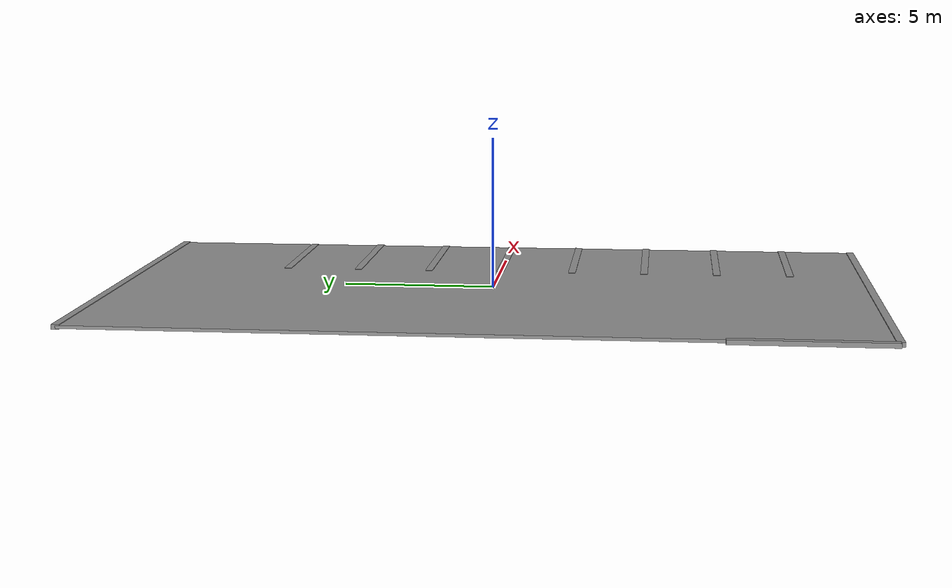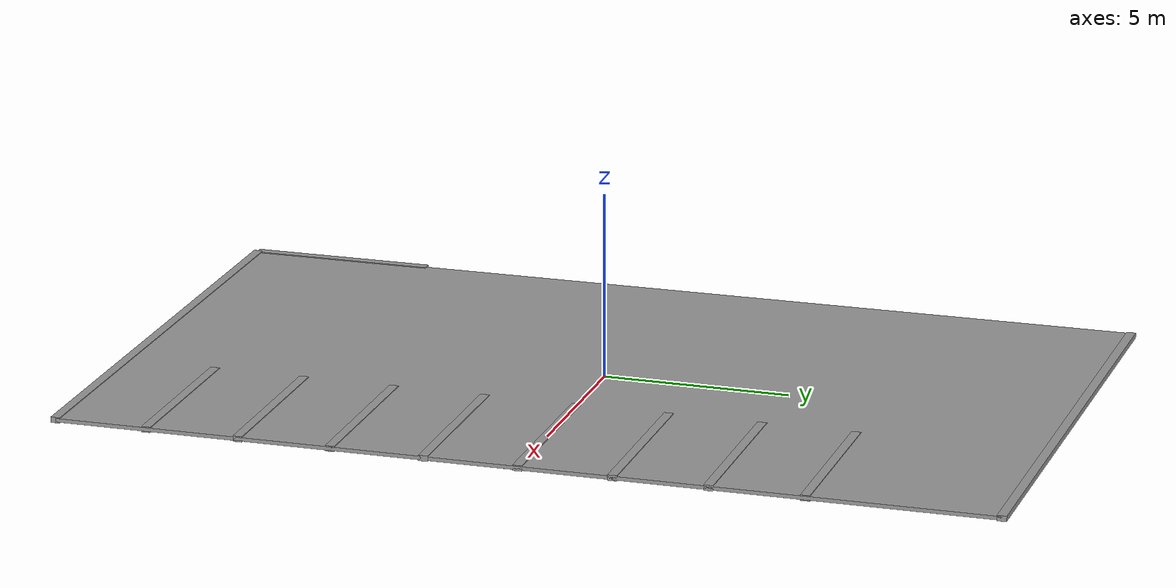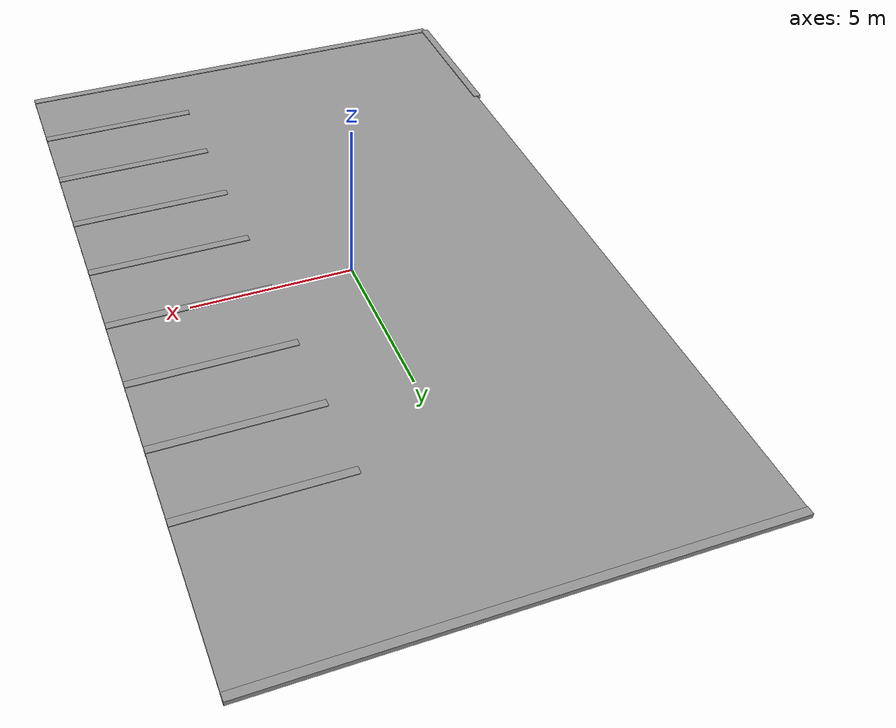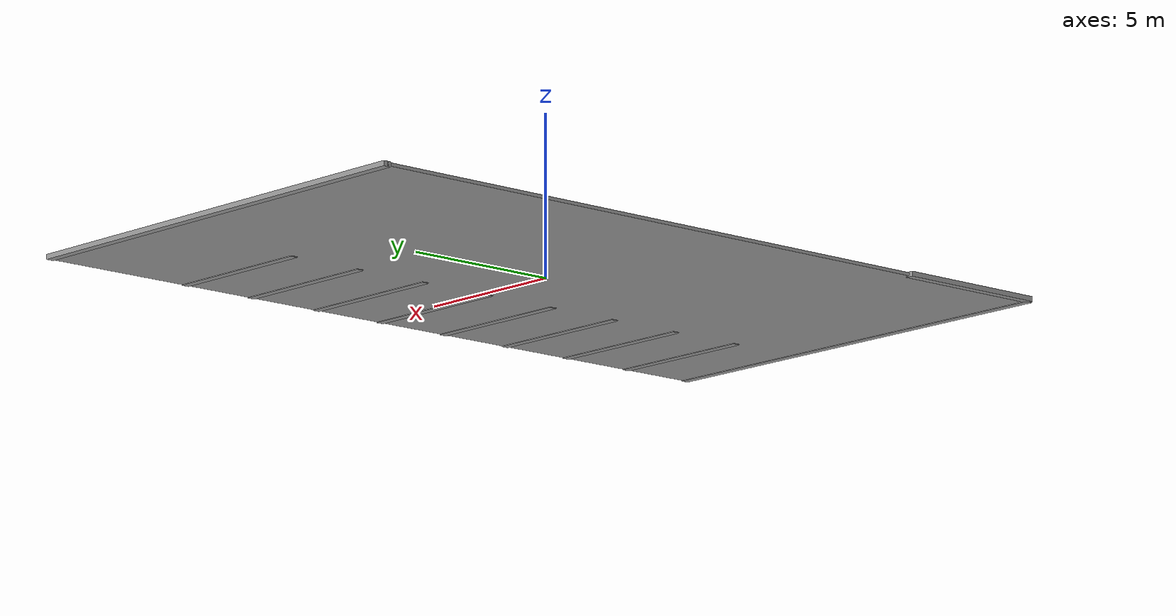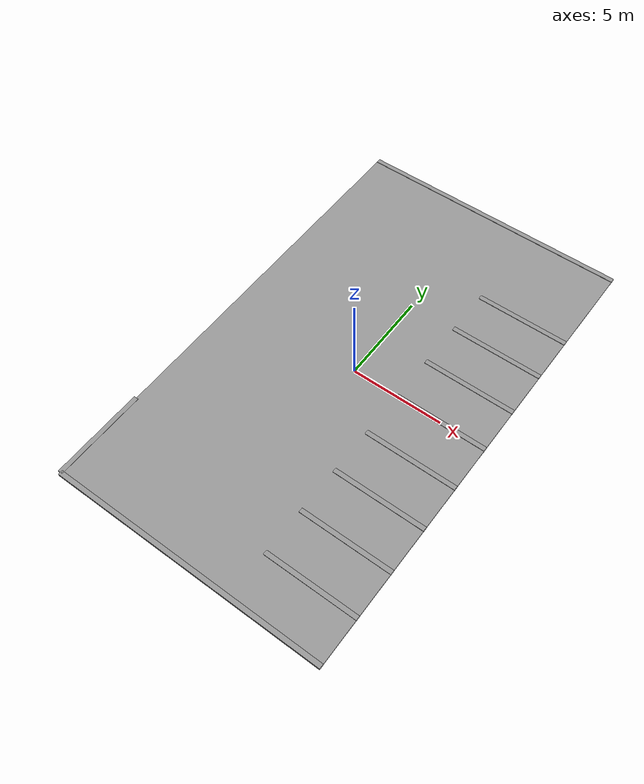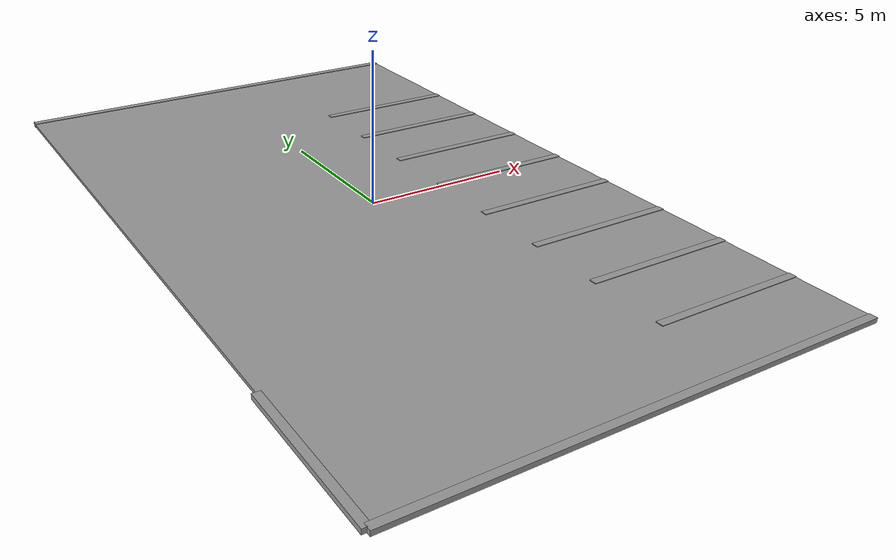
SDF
<?xml version='1.0'?>
<sdf version='1.7'>
  <model name='parking_space'>
    <link name='link_0'>
      <inertial>
        <mass>8812.5</mass>
        <inertia>
          <ixx>73454</ixx>
          <ixy>0</ixy>
          <ixz>0</ixz>
          <iyy>18375.9</iyy>
          <iyz>0</iyz>
          <izz>91796.9</izz>
        </inertia>
        <pose>0 0 0 0 -0 0</pose>
      </inertial>
      <pose>0 0 0 0 -0 0</pose>
      <gravity>1</gravity>
      <self_collide>0</self_collide>
      <kinematic>0</kinematic>
      <enable_wind>0</enable_wind>
      <visual name='ModelPreview_7::link_0::visual_8'>
        <pose>0 12.5 0 0 -0 0</pose>
        <geometry>
          <box>
            <size>15 0.25 0.15</size>
          </box>
        </geometry>
        <material>
          <lighting>1</lighting>
          <script>
            <uri>file://media/materials/scripts/gazebo.material</uri>
            <name>Gazebo/Grey</name>
          </script>
          <shader type='pixel'>
            <normal_map>__default__</normal_map>
          </shader>
          <ambient>1 1 1 1</ambient>
          <diffuse>1 1 1 1</diffuse>
          <specular>1 1 1 1</specular>
          <emissive>0.933 0.933 0.925 1</emissive>
        </material>
        <transparency>0</transparency>
        <cast_shadows>1</cast_shadows>
      </visual>
      <visual name='ModelPreview_34::link_0::visual_11'>
        <pose>-7.5 -10 0 0 -0 0</pose>
        <geometry>
          <box>
            <size>0.25 5 0.15</size>
          </box>
        </geometry>
        <material>
          <lighting>1</lighting>
          <script>
            <uri>file://media/materials/scripts/gazebo.material</uri>
            <name>Gazebo/Grey</name>
          </script>
          <shader type='pixel'>
            <normal_map>__default__</normal_map>
          </shader>
          <ambient>1 1 1 1</ambient>
          <diffuse>1 1 1 1</diffuse>
          <specular>1 1 1 1</specular>
          <emissive>1 1 1 1</emissive>
        </material>
        <transparency>0</transparency>
        <cast_shadows>1</cast_shadows>
      </visual>
      <visual name='ModelPreview_7::link_0::visual_5'>
        <pose>5 2.5 0 0 -0 0</pose>
        <geometry>
          <box>
            <size>5 0.25 0.15</size>
          </box>
        </geometry>
        <material>
          <lighting>1</lighting>
          <script>
            <uri>file://media/materials/scripts/gazebo.material</uri>
            <name>Gazebo/Grey</name>
          </script>
          <shader type='pixel'>
            <normal_map>__default__</normal_map>
          </shader>
          <ambient>1 1 1 1</ambient>
          <diffuse>1 1 1 1</diffuse>
          <specular>1 1 1 1</specular>
          <emissive>0.933 0.933 0.925 1</emissive>
        </material>
        <transparency>0</transparency>
        <cast_shadows>1</cast_shadows>
      </visual>
      <visual name='ModelPreview_7::link_0::visual_2'>
        <pose>5 -5 0 0 -0 0</pose>
        <geometry>
          <box>
            <size>5 0.25 0.15</size>
          </box>
        </geometry>
        <material>
          <lighting>1</lighting>
          <script>
            <uri>file://media/materials/scripts/gazebo.material</uri>
            <name>Gazebo/Grey</name>
          </script>
          <shader type='pixel'>
            <normal_map>__default__</normal_map>
          </shader>
          <ambient>1 1 1 1</ambient>
          <diffuse>1 1 1 1</diffuse>
          <specular>1 1 1 1</specular>
          <emissive>0.933 0.933 0.925 1</emissive>
        </material>
        <transparency>0</transparency>
        <cast_shadows>1</cast_shadows>
      </visual>
      <visual name='ModelPreview_7::link_0::visual_7'>
        <pose>0 -12.5 0 0 -0 0</pose>
        <geometry>
          <box>
            <size>15 0.25 0.15</size>
          </box>
        </geometry>
        <material>
          <lighting>1</lighting>
          <script>
            <uri>file://media/materials/scripts/gazebo.material</uri>
            <name>Gazebo/Grey</name>
          </script>
          <shader type='pixel'>
            <normal_map>__default__</normal_map>
          </shader>
          <ambient>1 1 1 1</ambient>
          <diffuse>1 1 1 1</diffuse>
          <specular>1 1 1 1</specular>
          <emissive>0.933 0.933 0.925 1</emissive>
        </material>
        <transparency>0</transparency>
        <cast_shadows>1</cast_shadows>
      </visual>
      <visual name='ModelPreview_7::link_0::visual_9'>
        <pose>5 -10 0 0 -0 0</pose>
        <geometry>
          <box>
            <size>5 0.25 0.15</size>
          </box>
        </geometry>
        <material>
          <lighting>1</lighting>
          <script>
            <uri>file://media/materials/scripts/gazebo.material</uri>
            <name>Gazebo/Grey</name>
          </script>
          <shader type='pixel'>
            <normal_map>__default__</normal_map>
          </shader>
          <ambient>1 1 1 1</ambient>
          <diffuse>1 1 1 1</diffuse>
          <specular>1 1 1 1</specular>
          <emissive>0.933 0.933 0.925 1</emissive>
        </material>
        <transparency>0</transparency>
        <cast_shadows>1</cast_shadows>
      </visual>
      <visual name='ModelPreview_7::link_0::visual_4'>
        <pose>5 0 0 0 -0 0</pose>
        <geometry>
          <box>
            <size>5 0.25 0.15</size>
          </box>
        </geometry>
        <material>
          <lighting>1</lighting>
          <script>
            <uri>file://media/materials/scripts/gazebo.material</uri>
            <name>Gazebo/Grey</name>
          </script>
          <shader type='pixel'>
            <normal_map>__default__</normal_map>
          </shader>
          <ambient>1 1 1 1</ambient>
          <diffuse>1 1 1 1</diffuse>
          <specular>1 1 1 1</specular>
          <emissive>0.933 0.933 0.925 1</emissive>
        </material>
        <transparency>0</transparency>
        <cast_shadows>1</cast_shadows>
      </visual>
      <visual name='ModelPreview_7::link_0::visual_10'>
        <pose>5 7.5 0 0 -0 0</pose>
        <geometry>
          <box>
            <size>5 0.25 0.15</size>
          </box>
        </geometry>
        <material>
          <lighting>1</lighting>
          <script>
            <uri>file://media/materials/scripts/gazebo.material</uri>
            <name>Gazebo/Grey</name>
          </script>
          <shader type='pixel'>
            <normal_map>__default__</normal_map>
          </shader>
          <ambient>1 1 1 1</ambient>
          <diffuse>1 1 1 1</diffuse>
          <specular>1 1 1 1</specular>
          <emissive>0.933 0.933 0.925 1</emissive>
        </material>
        <transparency>0</transparency>
        <cast_shadows>1</cast_shadows>
      </visual>
      <visual name='ModelPreview_7::link_0::visual_1'>
        <pose>5 -7.5 0 0 -0 0</pose>
        <geometry>
          <box>
            <size>5 0.25 0.15</size>
          </box>
        </geometry>
        <material>
          <lighting>1</lighting>
          <script>
            <uri>file://media/materials/scripts/gazebo.material</uri>
            <name>Gazebo/Grey</name>
          </script>
          <shader type='pixel'>
            <normal_map>__default__</normal_map>
          </shader>
          <ambient>1 1 1 1</ambient>
          <diffuse>1 1 1 1</diffuse>
          <specular>1 1 1 1</specular>
          <emissive>0.933 0.933 0.925 1</emissive>
        </material>
        <transparency>0</transparency>
        <cast_shadows>1</cast_shadows>
      </visual>
      <visual name='ModelPreview_7::link_0::visual_3'>
        <pose>5 -2.5 0 0 -0 0</pose>
        <geometry>
          <box>
            <size>5 0.25 0.15</size>
          </box>
        </geometry>
        <material>
          <lighting>1</lighting>
          <script>
            <uri>file://media/materials/scripts/gazebo.material</uri>
            <name>Gazebo/Grey</name>
          </script>
          <shader type='pixel'>
            <normal_map>__default__</normal_map>
          </shader>
          <ambient>1 1 1 1</ambient>
          <diffuse>1 1 1 1</diffuse>
          <specular>1 1 1 1</specular>
          <emissive>0.933 0.933 0.925 1</emissive>
        </material>
        <transparency>0</transparency>
        <cast_shadows>1</cast_shadows>
      </visual>
      <visual name='ModelPreview_7::link_0::visual_6'>
        <pose>5 5 0 0 -0 0</pose>
        <geometry>
          <box>
            <size>5 0.25 0.15</size>
          </box>
        </geometry>
        <material>
          <lighting>1</lighting>
          <script>
            <uri>file://media/materials/scripts/gazebo.material</uri>
            <name>Gazebo/Grey</name>
          </script>
          <shader type='pixel'>
            <normal_map>__default__</normal_map>
          </shader>
          <ambient>1 1 1 1</ambient>
          <diffuse>1 1 1 1</diffuse>
          <specular>1 1 1 1</specular>
          <emissive>0.933 0.933 0.925 1</emissive>
        </material>
        <transparency>0</transparency>
        <cast_shadows>1</cast_shadows>
      </visual>
      <visual name='visual'>
        <pose>0 0 0 0 -0 0</pose>
        <geometry>
          <box>
            <size>15 25 0.1</size>
          </box>
        </geometry>
        <material>
          <lighting>1</lighting>
          <script>
            <uri>file://media/materials/scripts/gazebo.material</uri>
            <name>Gazebo/Grey</name>
          </script>
          <shader type='pixel'>
            <normal_map>__default__</normal_map>
          </shader>
          <ambient>0.008 0.008 0.008 1</ambient>
          <diffuse>0.18 0.204 0.212 1</diffuse>
          <specular>0 0 0 1</specular>
          <emissive>0 0 0 1</emissive>
        </material>
        <transparency>0</transparency>
        <cast_shadows>1</cast_shadows>
      </visual>
      <collision name='collision'>
        <laser_retro>0</laser_retro>
        <max_contacts>10</max_contacts>
        <pose>0 0 0 0 -0 0</pose>
        <geometry>
          <box>
            <size>15 25 0.15</size>
          </box>
        </geometry>
        <surface>
          <friction>
            <ode>
              <mu>1</mu>
              <mu2>1</mu2>
              <fdir1>0 0 0</fdir1>
              <slip1>0</slip1>
              <slip2>0</slip2>
            </ode>
            <torsional>
              <coefficient>1</coefficient>
              <patch_radius>0</patch_radius>
              <surface_radius>0</surface_radius>
              <use_patch_radius>1</use_patch_radius>
              <ode>
                <slip>0</slip>
              </ode>
            </torsional>
          </friction>
          <bounce>
            <restitution_coefficient>0</restitution_coefficient>
            <threshold>1e+06</threshold>
          </bounce>
          <contact>
            <collide_without_contact>0</collide_without_contact>
            <collide_without_contact_bitmask>1</collide_without_contact_bitmask>
            <collide_bitmask>1</collide_bitmask>
            <ode>
              <soft_cfm>0</soft_cfm>
              <soft_erp>0.2</soft_erp>
              <kp>1e+13</kp>
              <kd>1</kd>
              <max_vel>0.01</max_vel>
              <min_depth>0</min_depth>
            </ode>
            <bullet>
              <split_impulse>1</split_impulse>
              <split_impulse_penetration_threshold>-0.01</split_impulse_penetration_threshold>
              <soft_cfm>0</soft_cfm>
              <soft_erp>0.2</soft_erp>
              <kp>1e+13</kp>
              <kd>1</kd>
            </bullet>
          </contact>
        </surface>
      </collision>
    </link>
    <static>1</static>
    <allow_auto_disable>1</allow_auto_disable>
  </model>
</sdf>
